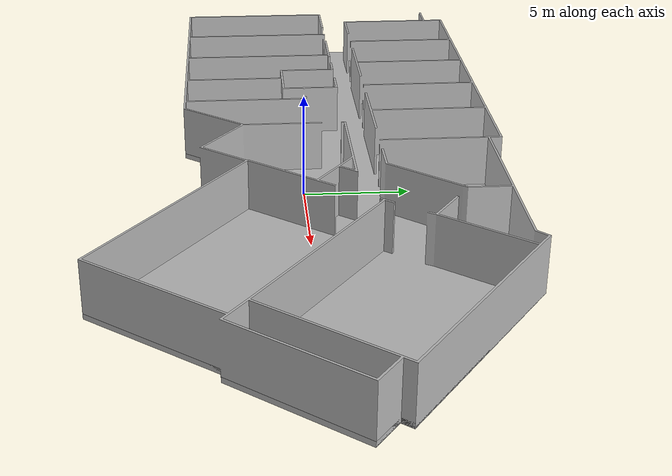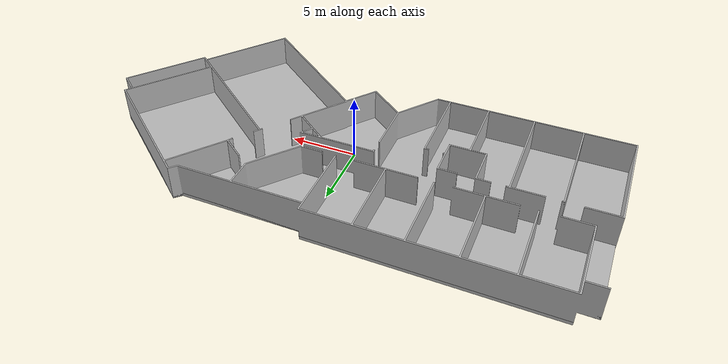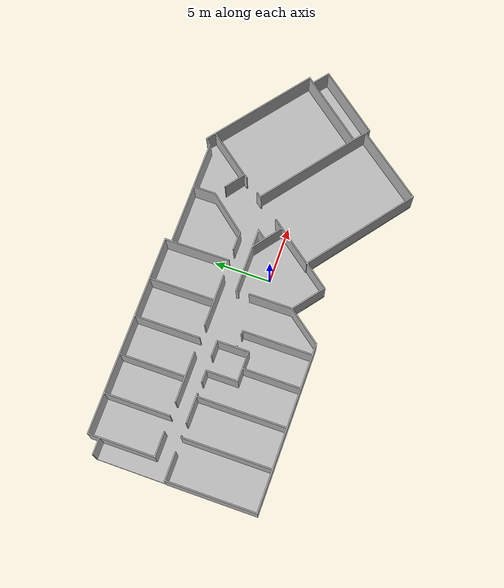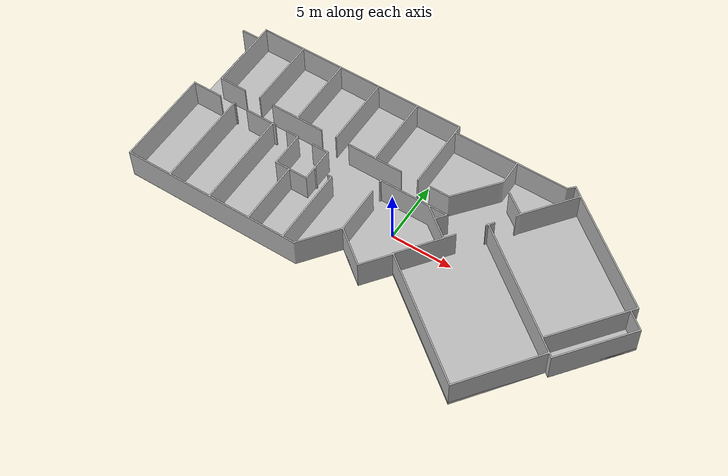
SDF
<?xml version="1.0"?>
<sdf version="1.6">
  <world name="ppi_office_world">
    <include>
      <uri>model://sun</uri>
    </include>

    <!-- The STL environment already includes a floor mesh, so no ground_plane is included here. -->
    <include>
      <uri>file:///home/fatma/autonomous_slam_baseline/src/swd_sim/models/ppi_office</uri>
    </include>
  </world>
</sdf>

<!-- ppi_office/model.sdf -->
<sdf version="1.6">
  <model name="ppi_office">
    <static>true</static>

    <link name="ppi_office_link">
      <visual name="floor_visual">
        <pose>-94.339852 9.401968 0 1.5708 0 0</pose>
        <geometry>
          <mesh>
            <uri>file:///home/fatma/autonomous_slam_baseline/src/swd_sim/models/ppi_office/meshes/floor2.STL</uri>
            <!-- STL coordinates are in millimeters and Y-up. Scale converts to meters; pose centers X/Z and rotates Y-up to Gazebo Z-up. -->
            <scale>0.001 0.001 0.001</scale>
          </mesh>
        </geometry>
      </visual>

      <collision name="floor_collision">
        <pose>-94.339852 9.401968 0 1.5708 0 0</pose>
        <geometry>
          <mesh>
            <uri>file:///home/fatma/autonomous_slam_baseline/src/swd_sim/models/ppi_office/meshes/floor2.STL</uri>
            <!-- Keep collision transform identical to visual transform. -->
            <scale>0.001 0.001 0.001</scale>
          </mesh>
        </geometry>
      </collision>

      <visual name="walls_visual">
        <pose>-94.339852 9.401968 0 1.5708 0 0</pose>
        <geometry>
          <mesh>
            <uri>file:///home/fatma/autonomous_slam_baseline/src/swd_sim/models/ppi_office/meshes/walls2.STL</uri>
            <!-- STL coordinates are in millimeters and Y-up. Scale converts to meters; pose centers X/Z and rotates Y-up to Gazebo Z-up. -->
            <scale>0.001 0.001 0.001</scale>
          </mesh>
        </geometry>
      </visual>

      <collision name="walls_collision">
        <pose>-94.339852 9.401968 0 1.5708 0 0</pose>
        <geometry>
          <mesh>
            <uri>file:///home/fatma/autonomous_slam_baseline/src/swd_sim/models/ppi_office/meshes/walls2.STL</uri>
            <!-- Keep collision transform identical to visual transform. -->
            <scale>0.001 0.001 0.001</scale>
          </mesh>
        </geometry>
      </collision>
    </link>
  </model>
</sdf>
